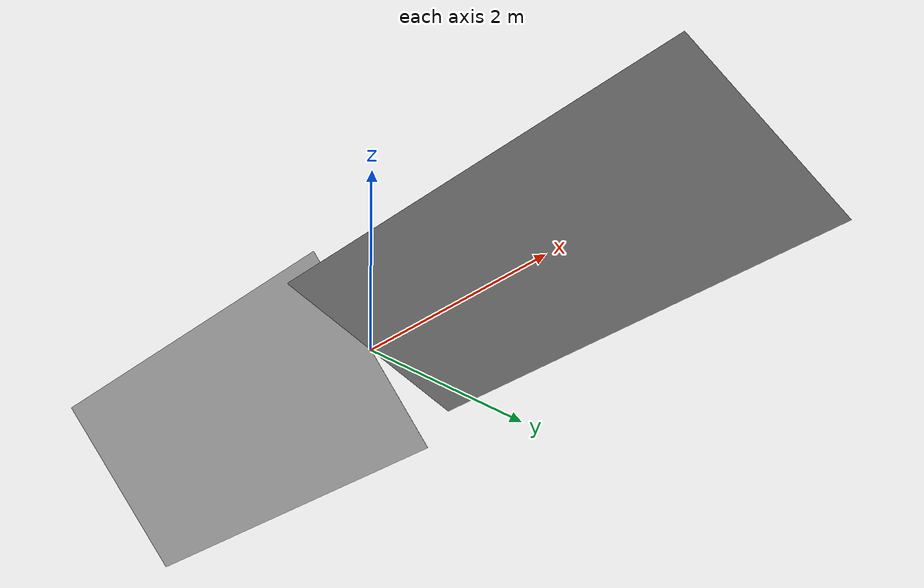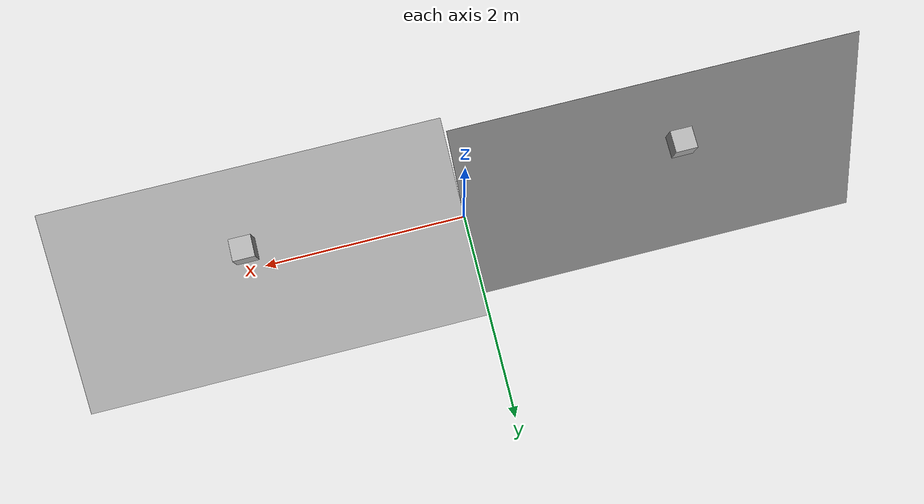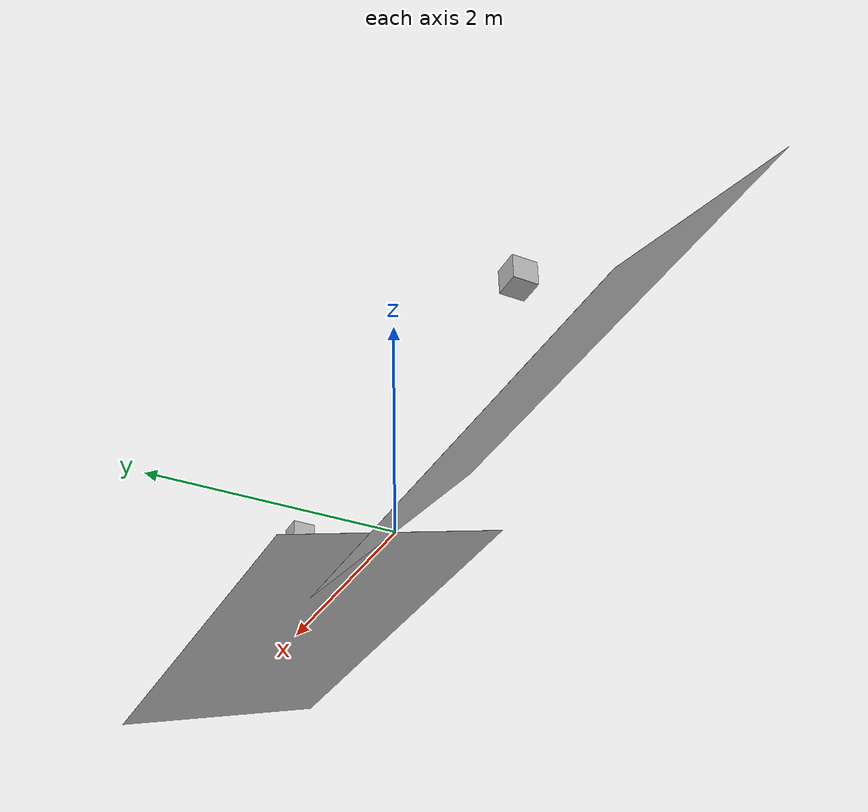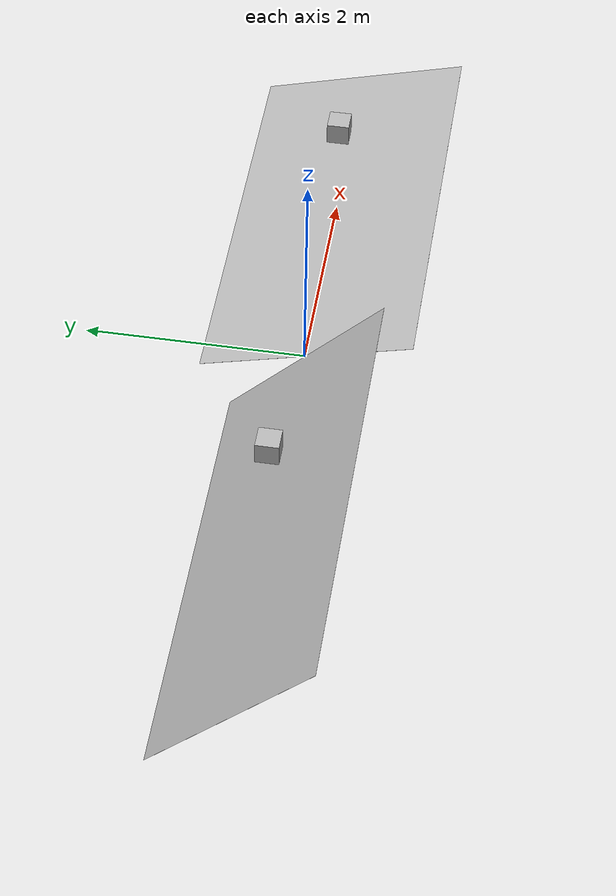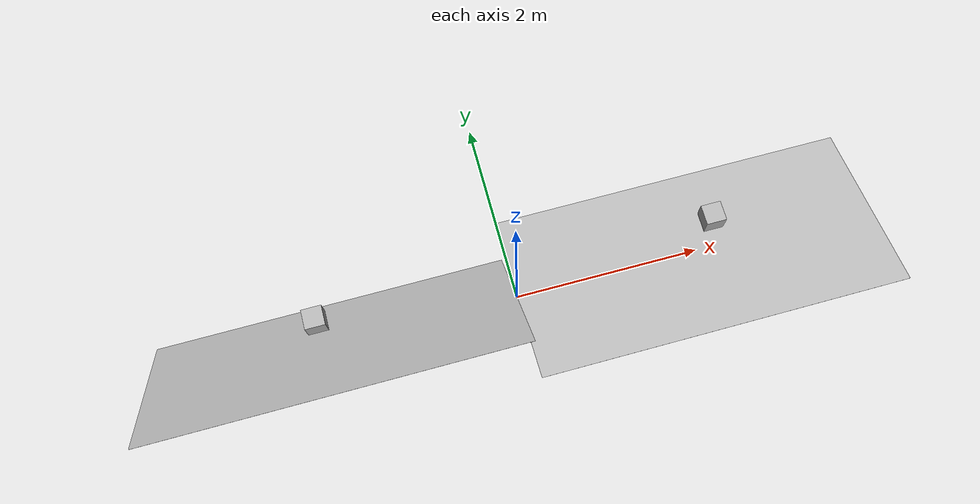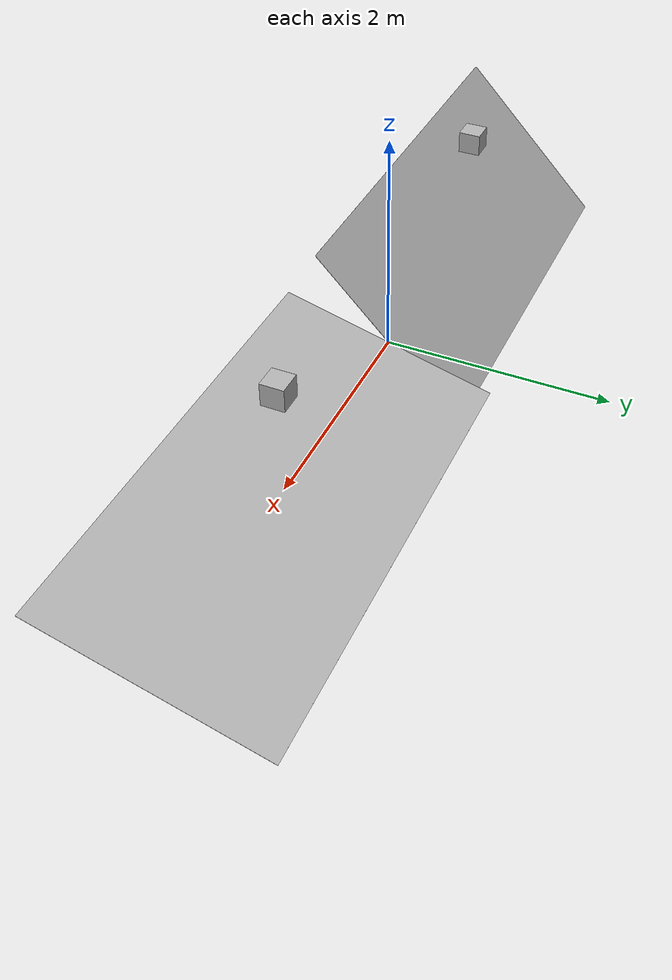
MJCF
<mujoco>
  <option gravity="0 0 -9.81" />
  <worldbody>
    <body name="ramp_1" pos="-2 0 0">
      <geom type="plane" size="2 1 0.1" quat="0.3 0.7 0 0" rgba="0.7 0.7 0.7 1" />
    </body>
    <body name="block_1" pos="-2 0 1">
      <geom type="box" size="0.1 0.1 0.1" density="1" rgba="0.7 0.7 0.7 1" />
      <joint type="free" />
    </body>
    <body name="ramp_2" pos="2 0 0">
      <geom type="plane" size="2 1 0.1" quat="0.13 0.99 0 0" rgba="0.7 0.7 0.7 1" />
    </body>
    <body name="block_2" pos="2 0 1">
      <geom type="box" size="0.1 0.1 0.1" density="1" rgba="0.7 0.7 0.7 1" />
      <joint type="free" />
    </body>
  </worldbody>
</mujoco>
